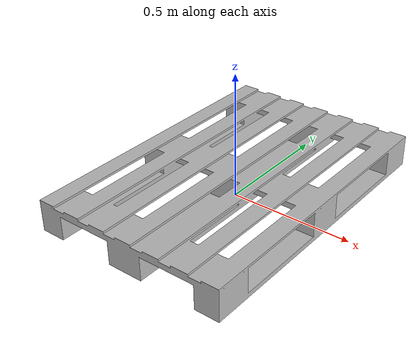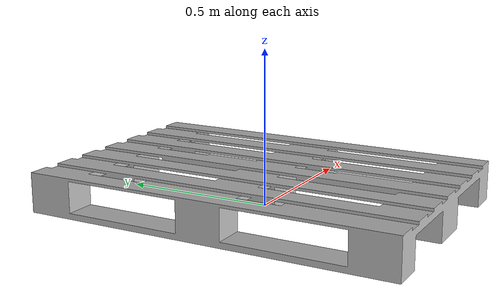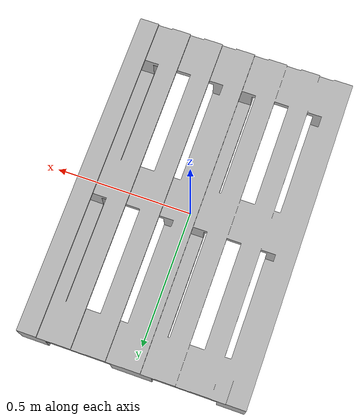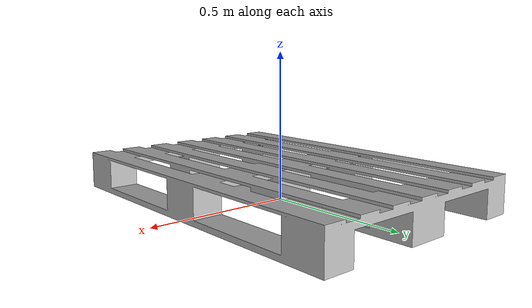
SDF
<?xml version="1.0" ?>
<sdf version="1.4">
  <model name="eur_pallet">
    <static>true</static>
    <link name="link">
      <inertial>
        <mass>22</mass>
      </inertial>
      <collision name="collision">
        <geometry>
          <mesh>
            <uri>model://eur_pallet/meshes/eur_pallet.stl</uri>
          </mesh>
        </geometry>
      </collision>
      <visual name="visual">
        <geometry>
          <mesh>
            <uri>model://eur_pallet/meshes/eur_pallet.stl</uri>
          </mesh>
        </geometry>
      </visual>
    </link>
  </model>
</sdf>
